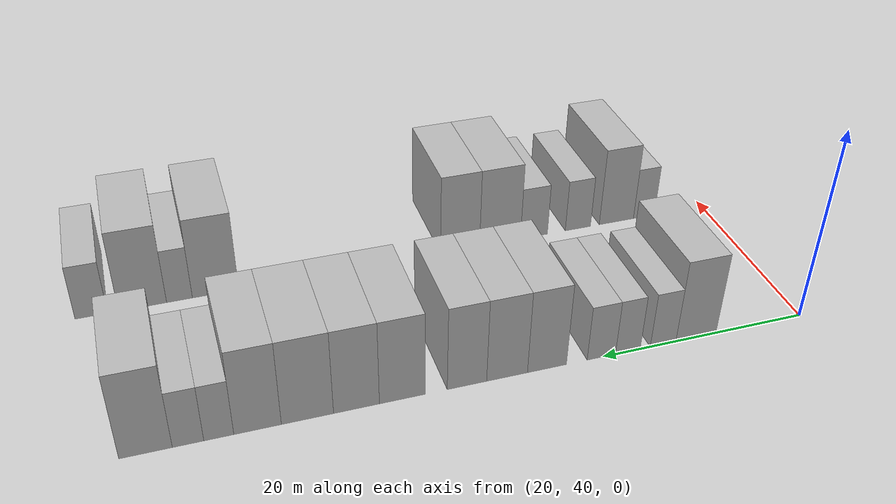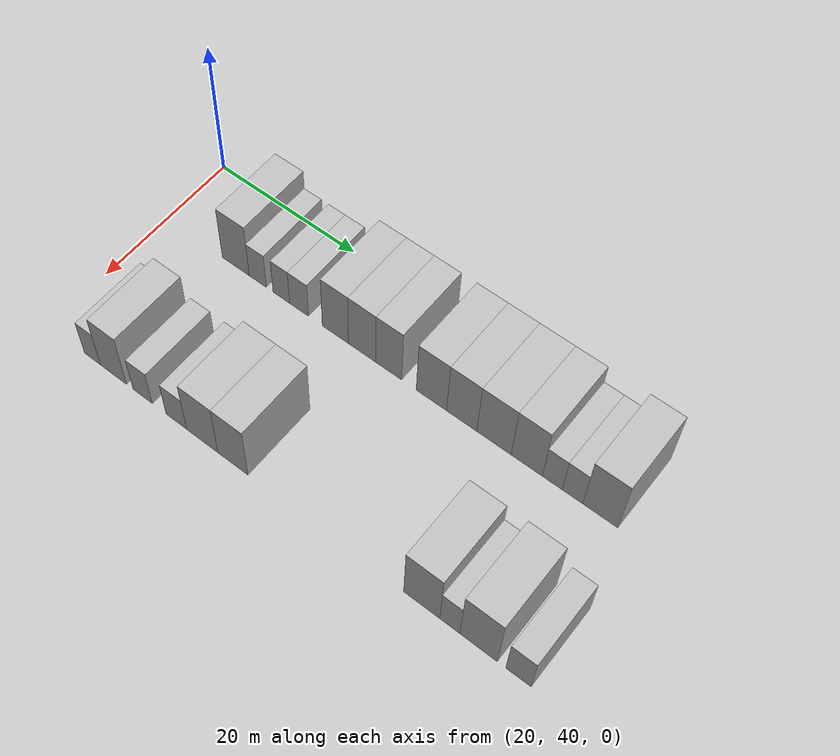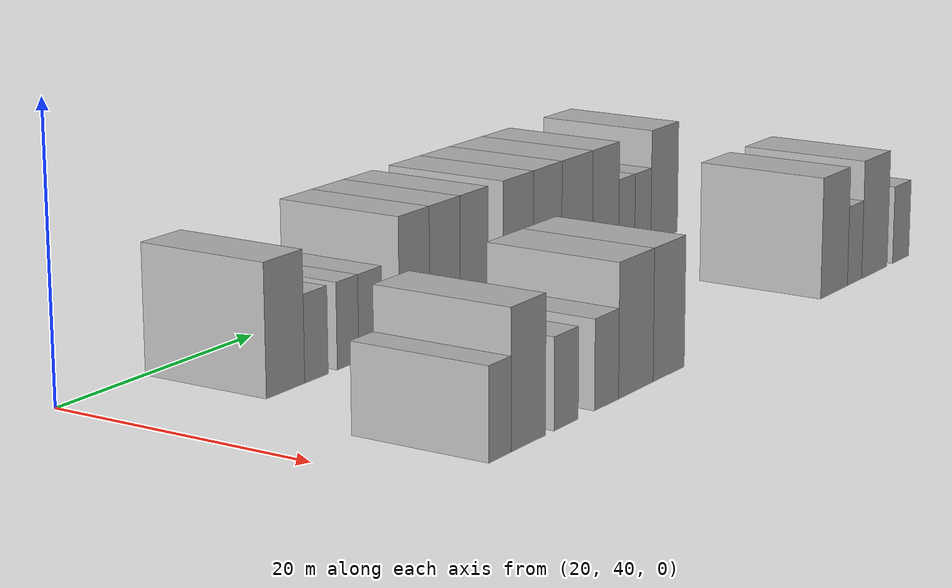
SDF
<sdf version="1.6">
 <world name="default">
  <model name="building_59">
   <static>1</static>
   <pose>25.0000 50.7413 0 0.000000 0.000000 0.000000</pose>
   <link name="link">
    <pose>0 0 4.50 0 0 0</pose>
    <collision name="collision"><geometry><box><size>10.0000 4.0751 9.0000</size></box></geometry></collision>
    <visual name="visual">
     <cast_shadows>0</cast_shadows>
     <geometry><box><size>10.0000 4.0751 9.0000</size></box></geometry>
     <material>
      <script>
       <uri>model://HANNAS_wall/materials/scripts</uri>
       <uri>model://HANNAS_wall/materials/textures</uri>
       <name>vrc/HANNAS_wall</name>
      </script>
     </material>
    </visual>
   </link>
  </model>
  <model name="building_60">
   <static>1</static>
   <pose>25.0000 54.0608 0 0.000000 0.000000 0.000000</pose>
   <link name="link">
    <pose>0 0 3.00 0 0 0</pose>
    <collision name="collision"><geometry><box><size>10.0000 2.5638 6.0000</size></box></geometry></collision>
    <visual name="visual">
     <cast_shadows>0</cast_shadows>
     <geometry><box><size>10.0000 2.5638 6.0000</size></box></geometry>
     <material>
      <script>
       <uri>model://HANNAS_wall/materials/scripts</uri>
       <uri>model://HANNAS_wall/materials/textures</uri>
       <name>vrc/HANNAS_wall</name>
      </script>
     </material>
    </visual>
   </link>
  </model>
  <model name="building_61">
   <static>1</static>
   <pose>25.0000 57.5639 0 0.000000 0.000000 0.000000</pose>
   <link name="link">
    <pose>0 0 3.00 0 0 0</pose>
    <collision name="collision"><geometry><box><size>10.0000 2.4423 6.0000</size></box></geometry></collision>
    <visual name="visual">
     <cast_shadows>0</cast_shadows>
     <geometry><box><size>10.0000 2.4423 6.0000</size></box></geometry>
     <material>
      <script>
       <uri>model://HANNAS_wall/materials/scripts</uri>
       <uri>model://HANNAS_wall/materials/textures</uri>
       <name>vrc/HANNAS_wall</name>
      </script>
     </material>
    </visual>
   </link>
  </model>
  <model name="building_62">
   <static>1</static>
   <pose>25.0000 60.1617 0 0.000000 0.000000 0.000000</pose>
   <link name="link">
    <pose>0 0 3.00 0 0 0</pose>
    <collision name="collision"><geometry><box><size>10.0000 2.7533 6.0000</size></box></geometry></collision>
    <visual name="visual">
     <cast_shadows>0</cast_shadows>
     <geometry><box><size>10.0000 2.7533 6.0000</size></box></geometry>
     <material>
      <script>
       <uri>model://HANNAS_wall/materials/scripts</uri>
       <uri>model://HANNAS_wall/materials/textures</uri>
       <name>vrc/HANNAS_wall</name>
      </script>
     </material>
    </visual>
   </link>
  </model>
  <model name="building_63">
   <static>1</static>
   <pose>25.0000 65.3889 0 0.000000 0.000000 0.000000</pose>
   <link name="link">
    <pose>0 0 4.50 0 0 0</pose>
    <collision name="collision"><geometry><box><size>10.0000 3.7011 9.0000</size></box></geometry></collision>
    <visual name="visual">
     <cast_shadows>0</cast_shadows>
     <geometry><box><size>10.0000 3.7011 9.0000</size></box></geometry>
     <material>
      <script>
       <uri>model://HANNAS_wall/materials/scripts</uri>
       <uri>model://HANNAS_wall/materials/textures</uri>
       <name>vrc/HANNAS_wall</name>
      </script>
     </material>
    </visual>
   </link>
  </model>
  <model name="building_64">
   <static>1</static>
   <pose>25.0000 69.1445 0 0.000000 0.000000 0.000000</pose>
   <link name="link">
    <pose>0 0 4.50 0 0 0</pose>
    <collision name="collision"><geometry><box><size>10.0000 3.8100 9.0000</size></box></geometry></collision>
    <visual name="visual">
     <cast_shadows>0</cast_shadows>
     <geometry><box><size>10.0000 3.8100 9.0000</size></box></geometry>
     <material>
      <script>
       <uri>model://HANNAS_wall/materials/scripts</uri>
       <uri>model://HANNAS_wall/materials/textures</uri>
       <name>vrc/HANNAS_wall</name>
      </script>
     </material>
    </visual>
   </link>
  </model>
  <model name="building_65">
   <static>1</static>
   <pose>25.0000 72.8542 0 0.000000 0.000000 0.000000</pose>
   <link name="link">
    <pose>0 0 4.50 0 0 0</pose>
    <collision name="collision"><geometry><box><size>10.0000 3.6094 9.0000</size></box></geometry></collision>
    <visual name="visual">
     <cast_shadows>0</cast_shadows>
     <geometry><box><size>10.0000 3.6094 9.0000</size></box></geometry>
     <material>
      <script>
       <uri>model://HANNAS_wall/materials/scripts</uri>
       <uri>model://HANNAS_wall/materials/textures</uri>
       <name>vrc/HANNAS_wall</name>
      </script>
     </material>
    </visual>
   </link>
  </model>
  <model name="building_66">
   <static>1</static>
   <pose>25.0000 78.6925 0 0.000000 0.000000 0.000000</pose>
   <link name="link">
    <pose>0 0 4.50 0 0 0</pose>
    <collision name="collision"><geometry><box><size>10.0000 4.0673 9.0000</size></box></geometry></collision>
    <visual name="visual">
     <cast_shadows>0</cast_shadows>
     <geometry><box><size>10.0000 4.0673 9.0000</size></box></geometry>
     <material>
      <script>
       <uri>model://HANNAS_wall/materials/scripts</uri>
       <uri>model://HANNAS_wall/materials/textures</uri>
       <name>vrc/HANNAS_wall</name>
      </script>
     </material>
    </visual>
   </link>
  </model>
  <model name="building_67">
   <static>1</static>
   <pose>25.0000 82.7289 0 0.000000 0.000000 0.000000</pose>
   <link name="link">
    <pose>0 0 4.50 0 0 0</pose>
    <collision name="collision"><geometry><box><size>10.0000 4.0054 9.0000</size></box></geometry></collision>
    <visual name="visual">
     <cast_shadows>0</cast_shadows>
     <geometry><box><size>10.0000 4.0054 9.0000</size></box></geometry>
     <material>
      <script>
       <uri>model://HANNAS_wall/materials/scripts</uri>
       <uri>model://HANNAS_wall/materials/textures</uri>
       <name>vrc/HANNAS_wall</name>
      </script>
     </material>
    </visual>
   </link>
  </model>
  <model name="building_68">
   <static>1</static>
   <pose>25.0000 86.9607 0 0.000000 0.000000 0.000000</pose>
   <link name="link">
    <pose>0 0 4.50 0 0 0</pose>
    <collision name="collision"><geometry><box><size>10.0000 4.4581 9.0000</size></box></geometry></collision>
    <visual name="visual">
     <cast_shadows>0</cast_shadows>
     <geometry><box><size>10.0000 4.4581 9.0000</size></box></geometry>
     <material>
      <script>
       <uri>model://HANNAS_wall/materials/scripts</uri>
       <uri>model://HANNAS_wall/materials/textures</uri>
       <name>vrc/HANNAS_wall</name>
      </script>
     </material>
    </visual>
   </link>
  </model>
  <model name="building_69">
   <static>1</static>
   <pose>25.0000 91.1785 0 0.000000 0.000000 0.000000</pose>
   <link name="link">
    <pose>0 0 4.50 0 0 0</pose>
    <collision name="collision"><geometry><box><size>10.0000 3.9776 9.0000</size></box></geometry></collision>
    <visual name="visual">
     <cast_shadows>0</cast_shadows>
     <geometry><box><size>10.0000 3.9776 9.0000</size></box></geometry>
     <material>
      <script>
       <uri>model://HANNAS_wall/materials/scripts</uri>
       <uri>model://HANNAS_wall/materials/textures</uri>
       <name>vrc/HANNAS_wall</name>
      </script>
     </material>
    </visual>
   </link>
  </model>
  <model name="building_70">
   <static>1</static>
   <pose>25.0000 94.4016 0 0.000000 0.000000 0.000000</pose>
   <link name="link">
    <pose>0 0 3.00 0 0 0</pose>
    <collision name="collision"><geometry><box><size>10.0000 2.4686 6.0000</size></box></geometry></collision>
    <visual name="visual">
     <cast_shadows>0</cast_shadows>
     <geometry><box><size>10.0000 2.4686 6.0000</size></box></geometry>
     <material>
      <script>
       <uri>model://HANNAS_wall/materials/scripts</uri>
       <uri>model://HANNAS_wall/materials/textures</uri>
       <name>vrc/HANNAS_wall</name>
      </script>
     </material>
    </visual>
   </link>
  </model>
  <model name="building_71">
   <static>1</static>
   <pose>25.0000 96.9137 0 0.000000 0.000000 0.000000</pose>
   <link name="link">
    <pose>0 0 3.00 0 0 0</pose>
    <collision name="collision"><geometry><box><size>10.0000 2.5554 6.0000</size></box></geometry></collision>
    <visual name="visual">
     <cast_shadows>0</cast_shadows>
     <geometry><box><size>10.0000 2.5554 6.0000</size></box></geometry>
     <material>
      <script>
       <uri>model://HANNAS_wall/materials/scripts</uri>
       <uri>model://HANNAS_wall/materials/textures</uri>
       <name>vrc/HANNAS_wall</name>
      </script>
     </material>
    </visual>
   </link>
  </model>
  <model name="building_72">
   <static>1</static>
   <pose>25.0000 100.3317 0 0.000000 0.000000 0.000000</pose>
   <link name="link">
    <pose>0 0 4.50 0 0 0</pose>
    <collision name="collision"><geometry><box><size>10.0000 4.2807 9.0000</size></box></geometry></collision>
    <visual name="visual">
     <cast_shadows>0</cast_shadows>
     <geometry><box><size>10.0000 4.2807 9.0000</size></box></geometry>
     <material>
      <script>
       <uri>model://HANNAS_wall/materials/scripts</uri>
       <uri>model://HANNAS_wall/materials/textures</uri>
       <name>vrc/HANNAS_wall</name>
      </script>
     </material>
    </visual>
   </link>
  </model>
  <model name="building_162">
   <static>1</static>
   <pose>44.0000 46.7225 0 0.000000 0.000000 0.000000</pose>
   <link name="link">
    <pose>0 0 3.00 0 0 0</pose>
    <collision name="collision"><geometry><box><size>10.0000 2.4254 6.0000</size></box></geometry></collision>
    <visual name="visual">
     <cast_shadows>0</cast_shadows>
     <geometry><box><size>10.0000 2.4254 6.0000</size></box></geometry>
     <material>
      <script>
       <uri>model://HANNAS_wall/materials/scripts</uri>
       <uri>model://HANNAS_wall/materials/textures</uri>
       <name>vrc/HANNAS_wall</name>
      </script>
     </material>
    </visual>
   </link>
  </model>
  <model name="building_163">
   <static>1</static>
   <pose>44.0000 49.8952 0 0.000000 0.000000 0.000000</pose>
   <link name="link">
    <pose>0 0 4.50 0 0 0</pose>
    <collision name="collision"><geometry><box><size>10.0000 3.9199 9.0000</size></box></geometry></collision>
    <visual name="visual">
     <cast_shadows>0</cast_shadows>
     <geometry><box><size>10.0000 3.9199 9.0000</size></box></geometry>
     <material>
      <script>
       <uri>model://HANNAS_wall/materials/scripts</uri>
       <uri>model://HANNAS_wall/materials/textures</uri>
       <name>vrc/HANNAS_wall</name>
      </script>
     </material>
    </visual>
   </link>
  </model>
  <model name="building_164">
   <static>1</static>
   <pose>44.0000 54.2731 0 0.000000 0.000000 0.000000</pose>
   <link name="link">
    <pose>0 0 3.00 0 0 0</pose>
    <collision name="collision"><geometry><box><size>10.0000 2.8358 6.0000</size></box></geometry></collision>
    <visual name="visual">
     <cast_shadows>0</cast_shadows>
     <geometry><box><size>10.0000 2.8358 6.0000</size></box></geometry>
     <material>
      <script>
       <uri>model://HANNAS_wall/materials/scripts</uri>
       <uri>model://HANNAS_wall/materials/textures</uri>
       <name>vrc/HANNAS_wall</name>
      </script>
     </material>
    </visual>
   </link>
  </model>
  <model name="building_165">
   <static>1</static>
   <pose>44.0000 59.1780 0 0.000000 0.000000 0.000000</pose>
   <link name="link">
    <pose>0 0 3.00 0 0 0</pose>
    <collision name="collision"><geometry><box><size>10.0000 2.9740 6.0000</size></box></geometry></collision>
    <visual name="visual">
     <cast_shadows>0</cast_shadows>
     <geometry><box><size>10.0000 2.9740 6.0000</size></box></geometry>
     <material>
      <script>
       <uri>model://HANNAS_wall/materials/scripts</uri>
       <uri>model://HANNAS_wall/materials/textures</uri>
       <name>vrc/HANNAS_wall</name>
      </script>
     </material>
    </visual>
   </link>
  </model>
  <model name="building_166">
   <static>1</static>
   <pose>44.0000 62.8871 0 0.000000 0.000000 0.000000</pose>
   <link name="link">
    <pose>0 0 4.50 0 0 0</pose>
    <collision name="collision"><geometry><box><size>10.0000 4.4443 9.0000</size></box></geometry></collision>
    <visual name="visual">
     <cast_shadows>0</cast_shadows>
     <geometry><box><size>10.0000 4.4443 9.0000</size></box></geometry>
     <material>
      <script>
       <uri>model://HANNAS_wall/materials/scripts</uri>
       <uri>model://HANNAS_wall/materials/textures</uri>
       <name>vrc/HANNAS_wall</name>
      </script>
     </material>
    </visual>
   </link>
  </model>
  <model name="building_167">
   <static>1</static>
   <pose>44.0000 67.1976 0 0.000000 0.000000 0.000000</pose>
   <link name="link">
    <pose>0 0 4.50 0 0 0</pose>
    <collision name="collision"><geometry><box><size>10.0000 4.1765 9.0000</size></box></geometry></collision>
    <visual name="visual">
     <cast_shadows>0</cast_shadows>
     <geometry><box><size>10.0000 4.1765 9.0000</size></box></geometry>
     <material>
      <script>
       <uri>model://HANNAS_wall/materials/scripts</uri>
       <uri>model://HANNAS_wall/materials/textures</uri>
       <name>vrc/HANNAS_wall</name>
      </script>
     </material>
    </visual>
   </link>
  </model>
  <model name="building_168">
   <static>1</static>
   <pose>44.0000 91.9687 0 0.000000 0.000000 0.000000</pose>
   <link name="link">
    <pose>0 0 4.50 0 0 0</pose>
    <collision name="collision"><geometry><box><size>10.0000 4.4552 9.0000</size></box></geometry></collision>
    <visual name="visual">
     <cast_shadows>0</cast_shadows>
     <geometry><box><size>10.0000 4.4552 9.0000</size></box></geometry>
     <material>
      <script>
       <uri>model://HANNAS_wall/materials/scripts</uri>
       <uri>model://HANNAS_wall/materials/textures</uri>
       <name>vrc/HANNAS_wall</name>
      </script>
     </material>
    </visual>
   </link>
  </model>
  <model name="building_169">
   <static>1</static>
   <pose>44.0000 95.4177 0 0.000000 0.000000 0.000000</pose>
   <link name="link">
    <pose>0 0 3.00 0 0 0</pose>
    <collision name="collision"><geometry><box><size>10.0000 2.4429 6.0000</size></box></geometry></collision>
    <visual name="visual">
     <cast_shadows>0</cast_shadows>
     <geometry><box><size>10.0000 2.4429 6.0000</size></box></geometry>
     <material>
      <script>
       <uri>model://HANNAS_wall/materials/scripts</uri>
       <uri>model://HANNAS_wall/materials/textures</uri>
       <name>vrc/HANNAS_wall</name>
      </script>
     </material>
    </visual>
   </link>
  </model>
  <model name="building_170">
   <static>1</static>
   <pose>44.0000 98.8872 0 0.000000 0.000000 0.000000</pose>
   <link name="link">
    <pose>0 0 4.50 0 0 0</pose>
    <collision name="collision"><geometry><box><size>10.0000 4.4959 9.0000</size></box></geometry></collision>
    <visual name="visual">
     <cast_shadows>0</cast_shadows>
     <geometry><box><size>10.0000 4.4959 9.0000</size></box></geometry>
     <material>
      <script>
       <uri>model://HANNAS_wall/materials/scripts</uri>
       <uri>model://HANNAS_wall/materials/textures</uri>
       <name>vrc/HANNAS_wall</name>
      </script>
     </material>
    </visual>
   </link>
  </model>
  <model name="building_171">
   <static>1</static>
   <pose>44.0000 103.6197 0 0.000000 0.000000 0.000000</pose>
   <link name="link">
    <pose>0 0 3.00 0 0 0</pose>
    <collision name="collision"><geometry><box><size>10.0000 2.9692 6.0000</size></box></geometry></collision>
    <visual name="visual">
     <cast_shadows>0</cast_shadows>
     <geometry><box><size>10.0000 2.9692 6.0000</size></box></geometry>
     <material>
      <script>
       <uri>model://HANNAS_wall/materials/scripts</uri>
       <uri>model://HANNAS_wall/materials/textures</uri>
       <name>vrc/HANNAS_wall</name>
      </script>
     </material>
    </visual>
   </link>
  </model>
 </world>
</sdf>
